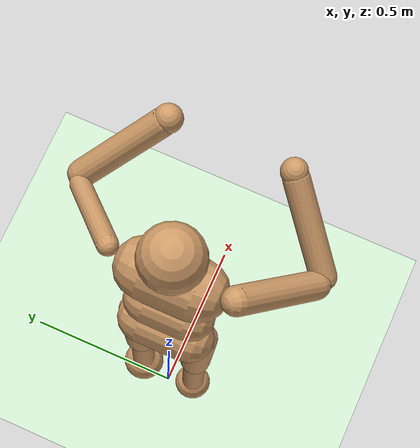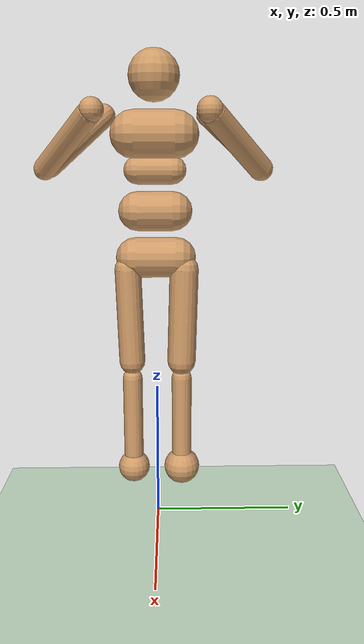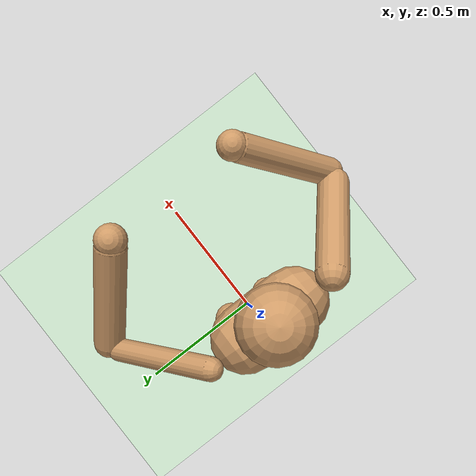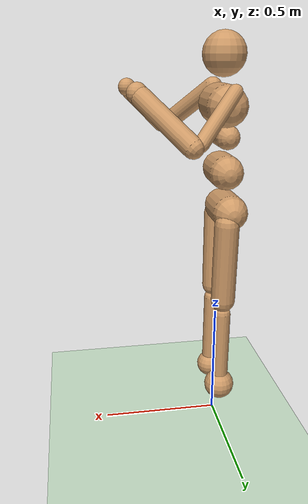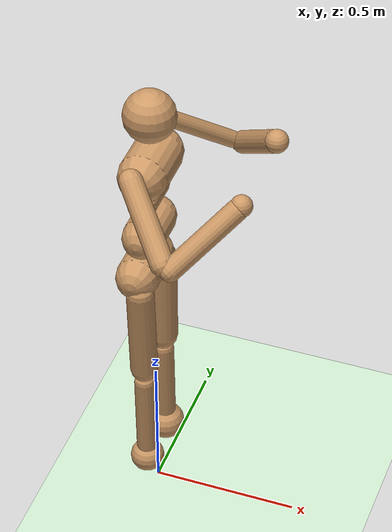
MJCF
<?xml version="1.0" encoding="utf-8"?>
<mujoco model="humanoid">
	<compiler angle="degree" inertiafromgeom="true"></compiler>
	<default>
		<joint armature="1" damping="1.0098819564051382" limited="true"></joint>
		<geom conaffinity="1" condim="1" contype="1" margin="0.001" material="geom" rgba="0.8 0.6 .4 1"></geom>
		<motor ctrllimited="true" ctrlrange="-.4 .4"></motor>
	</default>
	<option integrator="RK4" iterations="50" solver="PGS" timestep="0.003"></option>
	<size nkey="5" nuser_geom="1"></size>
	<visual>
		<map fogend="5" fogstart="3"></map>
	</visual>
	<asset>
		<texture builtin="gradient" height="100" rgb1=".4 .5 .6" rgb2="0 0 0" type="skybox" width="100"></texture>
		<texture builtin="flat" height="1278" mark="cross" markrgb="1 1 1" name="texgeom" random="0.01" rgb1="0.8 0.6 0.4" rgb2="0.8 0.6 0.4" type="cube" width="127"></texture>
		<texture builtin="checker" height="100" name="texplane" rgb1="0 0 0" rgb2="0.8 0.8 0.8" type="2d" width="100"></texture>
		<material name="MatPlane" reflectance="0.5" shininess="1" specular="1" texrepeat="60 60" texture="texplane"></material>
		<material name="geom" texture="texgeom" texuniform="true"></material>
	</asset>
	<worldbody>
		<light cutoff="100" diffuse="1 1 1" dir="-0 0 -1.3" directional="true" exponent="1" pos="0 0 1.3" specular=".1 .1 .1"></light>
		<geom condim="3" friction="1.0473977041733225 0.11980637018010398 0.08320132514710016" material="MatPlane" name="floor" pos="0 0 0" rgba="0.8 0.9 0.8 1" size="14.959814034290666 24.812401251838367 0.12120411052141918" type="plane"></geom>
		<body name="torso" pos="0 0 1.4">
			<camera name="track" mode="trackcom" pos="0 -4 0" xyaxes="1 0 0 0 0 1"></camera>
			<joint armature="0" damping="0.0" limited="false" name="root" pos="0 0 0" stiffness="0.0" type="free"></joint>
			<geom fromto="0 -.07 0 0 .07 0" name="torso1" size="0.08216235641121664" type="capsule"></geom>
			<geom name="head" pos="0 0 .19" size="0.08685677497870933" type="sphere" user="258"></geom>
			<geom fromto="-.01 -.06 -.12 -.01 .06 -.12" name="uwaist" size="0.04828614324038504" type="capsule"></geom>
			<body name="lwaist" pos="-.01 0 -0.260" quat="1.000 0 -0.002 0">
				<geom fromto="0 -.06 0 0 .06 0" name="lwaist" size="0.06915009305484894" type="capsule"></geom>
				<joint armature="0.02" axis="0 0 1" damping="4.530178094340975" name="abdomen_z" pos="0 0 0.065" range="-45 45" stiffness="24.351707455313235" type="hinge"></joint>
				<joint armature="0.02" axis="0 1 0" damping="4.834742736602777" name="abdomen_y" pos="0 0 0.065" range="-75 30" stiffness="11.996085651768805" type="hinge"></joint>
				<body name="pelvis" pos="0 0 -0.165" quat="1.000 0 -0.002 0">
					<joint armature="0.02" axis="1 0 0" damping="4.641702488947772" name="abdomen_x" pos="0 0 0.1" range="-35 35" stiffness="11.618099231610817" type="hinge"></joint>
					<geom fromto="-.02 -.07 0 -.02 .07 0" name="butt" size="0.07229106237988626" type="capsule"></geom>
					<body name="right_thigh" pos="0 -0.1 -0.04">
						<joint armature="0.01" axis="1 0 0" damping="5.256152850362897" name="right_hip_x" pos="0 0 0" range="-25 5" stiffness="8.73009027348724" type="hinge"></joint>
						<joint armature="0.01" axis="0 0 1" damping="5.327220867178834" name="right_hip_z" pos="0 0 0" range="-60 35" stiffness="12.966356729891448" type="hinge"></joint>
						<joint armature="0.0080" axis="0 1 0" damping="4.886021272204161" name="right_hip_y" pos="0 0 0" range="-110 20" stiffness="22.78052344188856" type="hinge"></joint>
						<geom fromto="0 0 0 0 0.01 -.34" name="right_thigh1" size="0.046758572486537794" type="capsule"></geom>
						<body name="right_shin" pos="0 0.01 -0.403">
							<joint armature="0.0060" axis="0 -1 0" name="right_knee" pos="0 0 .02" range="-160 -2" type="hinge"></joint>
							<geom fromto="0 0 0 0 0 -.3" name="right_shin1" size="0.03553768747453655" type="capsule"></geom>
							<body name="right_foot" pos="0 0 -0.45">
								<geom name="right_foot" pos="0 0 0.1" size="0.058044028733998124" type="sphere" user="0"></geom>
							</body>
						</body>
					</body>
					<body name="left_thigh" pos="0 0.1 -0.04">
						<joint armature="0.01" axis="-1 0 0" damping="4.3178414136349925" name="left_hip_x" pos="0 0 0" range="-25 5" stiffness="9.88348804977008" type="hinge"></joint>
						<joint armature="0.01" axis="0 0 -1" damping="5.897664582751374" name="left_hip_z" pos="0 0 0" range="-60 35" stiffness="10.81774347666718" type="hinge"></joint>
						<joint armature="0.01" axis="0 1 0" damping="4.681565232682918" name="left_hip_y" pos="0 0 0" range="-110 20" stiffness="21.384730386863772" type="hinge"></joint>
						<geom fromto="0 0 0 0 -0.01 -.34" name="left_thigh1" size="0.051245374979737524" type="capsule"></geom>
						<body name="left_shin" pos="0 -0.01 -0.403">
							<joint armature="0.0060" axis="0 -1 0" name="left_knee" pos="0 0 .02" range="-160 -2" stiffness="0.9964851801592447" type="hinge"></joint>
							<geom fromto="0 0 0 0 0 -.3" name="left_shin1" size="0.03617438675432091" type="capsule"></geom>
							<body name="left_foot" pos="0 0 -0.45">
								<geom name="left_foot" type="sphere" size="0.065590143320694" pos="0 0 0.1" user="0"></geom>
							</body>
						</body>
					</body>
				</body>
			</body>
			<body name="right_upper_arm" pos="0 -0.17 0.06">
				<joint armature="0.0068" axis="2 1 1" name="right_shoulder1" pos="0 0 0" range="-85 60" stiffness="1.0103202309574641" type="hinge"></joint>
				<joint armature="0.0051" axis="0 -1 1" name="right_shoulder2" pos="0 0 0" range="-85 60" stiffness="0.7596613729523077" type="hinge"></joint>
				<geom fromto="0 0 0 .16 -.16 -.16" name="right_uarm1" size="0.03897106014440898 0.16708682545789727" type="capsule"></geom>
				<body name="right_lower_arm" pos=".18 -.18 -.18">
					<joint armature="0.0028" axis="0 -1 1" name="right_elbow" pos="0 0 0" range="-90 50" stiffness="0.0" type="hinge"></joint>
					<geom fromto="0.01 0.01 0.01 .17 .17 .17" name="right_larm" size="0.035360316944487664" type="capsule"></geom>
					<geom name="right_hand" pos=".18 .18 .18" size="0.035991883332279324" type="sphere"></geom>
					<camera pos="0 0 0"></camera>
				</body>
			</body>
			<body name="left_upper_arm" pos="0 0.17 0.06">
				<joint armature="0.0068" axis="2 -1 1" name="left_shoulder1" pos="0 0 0" range="-60 85" stiffness="0.9358250700209996" type="hinge"></joint>
				<joint armature="0.0051" axis="0 1 1" name="left_shoulder2" pos="0 0 0" range="-60 85" stiffness="0.850439717017853" type="hinge"></joint>
				<geom fromto="0 0 0 .16 .16 -.16" name="left_uarm1" size="0.028488674921365097 0.13249741969231735" type="capsule"></geom>
				<body name="left_lower_arm" pos=".18 .18 -.18">
					<joint armature="0.0028" axis="0 -1 -1" name="left_elbow" pos="0 0 0" range="-90 50" stiffness="0.0" type="hinge"></joint>
					<geom fromto="0.01 -0.01 0.01 .17 -.17 .17" name="left_larm" size="0.03830035086826232" type="capsule"></geom>
					<geom name="left_hand" pos=".18 -.18 .18" size="0.038971207730137784" type="sphere"></geom>
				</body>
			</body>
		</body>
	</worldbody>
	<tendon>
		<fixed name="left_hipknee">
			<joint coef="-1" joint="left_hip_y"></joint>
			<joint coef="1" joint="left_knee"></joint>
		</fixed>
		<fixed name="right_hipknee">
			<joint coef="-1" joint="right_hip_y"></joint>
			<joint coef="1" joint="right_knee"></joint>
		</fixed>
	</tendon>
	<actuator>
		<motor gear="100" joint="abdomen_y" name="abdomen_y"></motor>
		<motor gear="100" joint="abdomen_z" name="abdomen_z"></motor>
		<motor gear="100" joint="abdomen_x" name="abdomen_x"></motor>
		<motor gear="100" joint="right_hip_x" name="right_hip_x"></motor>
		<motor gear="100" joint="right_hip_z" name="right_hip_z"></motor>
		<motor gear="300" joint="right_hip_y" name="right_hip_y"></motor>
		<motor gear="200" joint="right_knee" name="right_knee"></motor>
		<motor gear="100" joint="left_hip_x" name="left_hip_x"></motor>
		<motor gear="100" joint="left_hip_z" name="left_hip_z"></motor>
		<motor gear="300" joint="left_hip_y" name="left_hip_y"></motor>
		<motor gear="200" joint="left_knee" name="left_knee"></motor>
		<motor gear="25" joint="right_shoulder1" name="right_shoulder1"></motor>
		<motor gear="25" joint="right_shoulder2" name="right_shoulder2"></motor>
		<motor gear="25" joint="right_elbow" name="right_elbow"></motor>
		<motor gear="25" joint="left_shoulder1" name="left_shoulder1"></motor>
		<motor gear="25" joint="left_shoulder2" name="left_shoulder2"></motor>
		<motor gear="25" joint="left_elbow" name="left_elbow"></motor>
	</actuator>
</mujoco>
